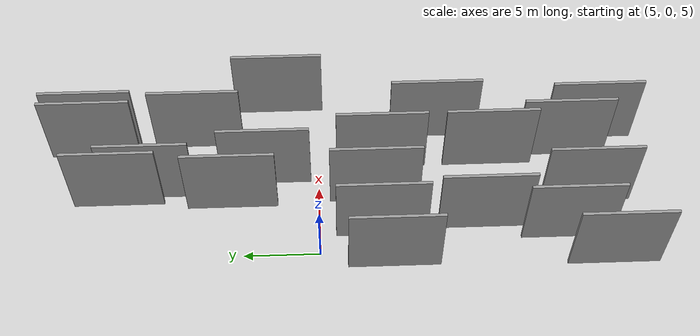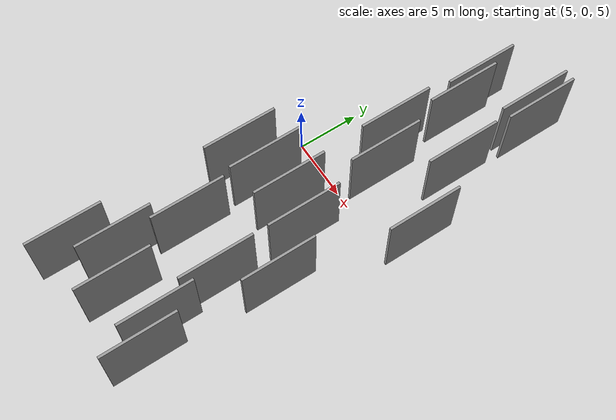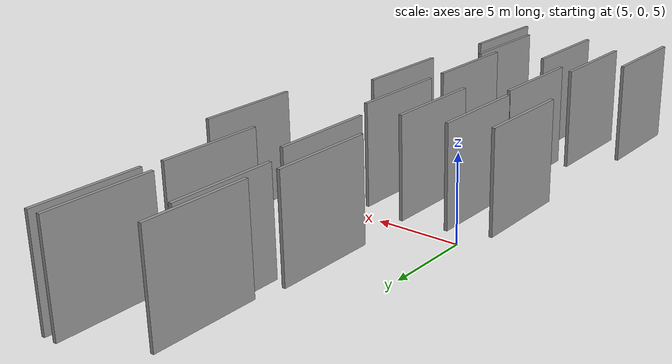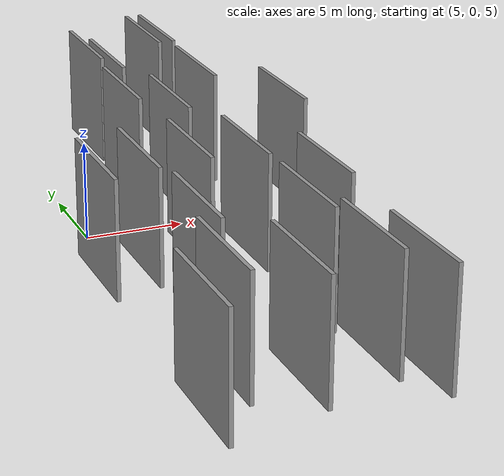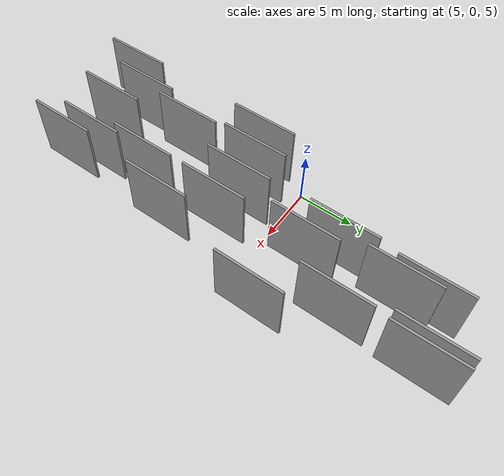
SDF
<sdf version="1.6">
 <world name="default">
  <scene>
   <sky><clouds><speed>12</speed></clouds></sky>
   <ambient>0.4 0.4 0.4 1</ambient>
   <background>0.7 0.7 0.7 1</background>
   <shadows>1</shadows>
  </scene>
  <gravity>0 0 -9.8066</gravity>
  <magnetic_field>6e-06 2.3e-05 -4.2e-05</magnetic_field>
  <physics default="0" name="default_physics" type="ode">
   <ode>
    <solver>
     <type>quick</type>
     <iters>10</iters>
     <sor>1.0</sor>
     <use_dynamic_moi_rescaling>0</use_dynamic_moi_rescaling>
    </solver>
    <constraints>
     <cfm>0</cfm>
     <erp>0.2</erp>
     <contact_max_correcting_vel>100</contact_max_correcting_vel>
     <contact_surface_layer>0.001</contact_surface_layer>
    </constraints>
   </ode>
   <max_step_size>0.004</max_step_size>
   <real_time_factor>1</real_time_factor>
   <real_time_update_rate>250</real_time_update_rate>
  </physics>
  <light name="sun" type="directional">
   <pose>0 0 10 0 0 0</pose>
   <diffuse>0.8 0.8 0.8 1</diffuse>
   <specular>0.2 0.2 0.2 1</specular>
   <attenuation>
    <range>1000</range>
    <constant>0.9</constant>
    <linear>0.01</linear>
    <quadratic>0.001</quadratic>
   </attenuation>
   <direction>-0.5 0.1 -0.9</direction>
  </light>
  <model name="grey_wall_1">
   <static>1</static>
   <pose>8.6702 -17.7167 5.0 0.000000 0.000000 1.570796</pose>
   <link name="link">
    <pose>0 0 3.00 0 0 0</pose>
    <collision name="collision"><geometry><box><size>6.00 0.2 6.00</size></box></geometry></collision>
    <visual name="visual">
     <cast_shadows>0</cast_shadows>
     <geometry><box><size>6.00 0.2 6.00</size></box></geometry>
     <material>
      <script>
       <uri>model://grey_wall/materials/scripts</uri>
       <uri>model://grey_wall/materials/textures</uri>
       <name>vrc/grey_wall</name>
      </script>
     </material>
    </visual>
   </link>
  </model>
  <model name="grey_wall_2">
   <static>1</static>
   <pose>11.8247 -11.4168 5.0 0.000000 0.000000 1.570796</pose>
   <link name="link">
    <pose>0 0 3.00 0 0 0</pose>
    <collision name="collision"><geometry><box><size>6.00 0.2 6.00</size></box></geometry></collision>
    <visual name="visual">
     <cast_shadows>0</cast_shadows>
     <geometry><box><size>6.00 0.2 6.00</size></box></geometry>
     <material>
      <script>
       <uri>model://grey_wall/materials/scripts</uri>
       <uri>model://grey_wall/materials/textures</uri>
       <name>vrc/grey_wall</name>
      </script>
     </material>
    </visual>
   </link>
  </model>
  <model name="grey_wall_3">
   <static>1</static>
   <pose>11.8159 -4.2176 5.0 0.000000 0.000000 1.570796</pose>
   <link name="link">
    <pose>0 0 3.00 0 0 0</pose>
    <collision name="collision"><geometry><box><size>6.00 0.2 6.00</size></box></geometry></collision>
    <visual name="visual">
     <cast_shadows>0</cast_shadows>
     <geometry><box><size>6.00 0.2 6.00</size></box></geometry>
     <material>
      <script>
       <uri>model://grey_wall/materials/scripts</uri>
       <uri>model://grey_wall/materials/textures</uri>
       <name>vrc/grey_wall</name>
      </script>
     </material>
    </visual>
   </link>
  </model>
  <model name="grey_wall_4">
   <static>1</static>
   <pose>14.1455 15.1615 5.0 0.000000 0.000000 1.570796</pose>
   <link name="link">
    <pose>0 0 3.00 0 0 0</pose>
    <collision name="collision"><geometry><box><size>6.00 0.2 6.00</size></box></geometry></collision>
    <visual name="visual">
     <cast_shadows>0</cast_shadows>
     <geometry><box><size>6.00 0.2 6.00</size></box></geometry>
     <material>
      <script>
       <uri>model://grey_wall/materials/scripts</uri>
       <uri>model://grey_wall/materials/textures</uri>
       <name>vrc/grey_wall</name>
      </script>
     </material>
    </visual>
   </link>
  </model>
  <model name="grey_wall_5">
   <static>1</static>
   <pose>13.9211 8.0993 5.0 0.000000 0.000000 1.570796</pose>
   <link name="link">
    <pose>0 0 3.00 0 0 0</pose>
    <collision name="collision"><geometry><box><size>6.00 0.2 6.00</size></box></geometry></collision>
    <visual name="visual">
     <cast_shadows>0</cast_shadows>
     <geometry><box><size>6.00 0.2 6.00</size></box></geometry>
     <material>
      <script>
       <uri>model://grey_wall/materials/scripts</uri>
       <uri>model://grey_wall/materials/textures</uri>
       <name>vrc/grey_wall</name>
      </script>
     </material>
    </visual>
   </link>
  </model>
  <model name="grey_wall_6">
   <static>1</static>
   <pose>8.8894 5.7542 5.0 0.000000 0.000000 1.570796</pose>
   <link name="link">
    <pose>0 0 3.00 0 0 0</pose>
    <collision name="collision"><geometry><box><size>6.00 0.2 6.00</size></box></geometry></collision>
    <visual name="visual">
     <cast_shadows>0</cast_shadows>
     <geometry><box><size>6.00 0.2 6.00</size></box></geometry>
     <material>
      <script>
       <uri>model://grey_wall/materials/scripts</uri>
       <uri>model://grey_wall/materials/textures</uri>
       <name>vrc/grey_wall</name>
      </script>
     </material>
    </visual>
   </link>
  </model>
  <model name="grey_wall_7">
   <static>1</static>
   <pose>4.0963 -4.7700 5.0 0.000000 0.000000 1.570796</pose>
   <link name="link">
    <pose>0 0 3.00 0 0 0</pose>
    <collision name="collision"><geometry><box><size>6.00 0.2 6.00</size></box></geometry></collision>
    <visual name="visual">
     <cast_shadows>0</cast_shadows>
     <geometry><box><size>6.00 0.2 6.00</size></box></geometry>
     <material>
      <script>
       <uri>model://grey_wall/materials/scripts</uri>
       <uri>model://grey_wall/materials/textures</uri>
       <name>vrc/grey_wall</name>
      </script>
     </material>
    </visual>
   </link>
  </model>
  <model name="grey_wall_8">
   <static>1</static>
   <pose>9.1276 -3.7219 5.0 0.000000 0.000000 1.570796</pose>
   <link name="link">
    <pose>0 0 3.00 0 0 0</pose>
    <collision name="collision"><geometry><box><size>6.00 0.2 6.00</size></box></geometry></collision>
    <visual name="visual">
     <cast_shadows>0</cast_shadows>
     <geometry><box><size>6.00 0.2 6.00</size></box></geometry>
     <material>
      <script>
       <uri>model://grey_wall/materials/scripts</uri>
       <uri>model://grey_wall/materials/textures</uri>
       <name>vrc/grey_wall</name>
      </script>
     </material>
    </visual>
   </link>
  </model>
  <model name="grey_wall_9">
   <static>1</static>
   <pose>6.8330 -10.7460 5.0 0.000000 0.000000 1.570796</pose>
   <link name="link">
    <pose>0 0 3.00 0 0 0</pose>
    <collision name="collision"><geometry><box><size>6.00 0.2 6.00</size></box></geometry></collision>
    <visual name="visual">
     <cast_shadows>0</cast_shadows>
     <geometry><box><size>6.00 0.2 6.00</size></box></geometry>
     <material>
      <script>
       <uri>model://grey_wall/materials/scripts</uri>
       <uri>model://grey_wall/materials/textures</uri>
       <name>vrc/grey_wall</name>
      </script>
     </material>
    </visual>
   </link>
  </model>
  <model name="grey_wall_10">
   <static>1</static>
   <pose>13.3306 15.1760 5.0 0.000000 0.000000 1.570796</pose>
   <link name="link">
    <pose>0 0 3.00 0 0 0</pose>
    <collision name="collision"><geometry><box><size>6.00 0.2 6.00</size></box></geometry></collision>
    <visual name="visual">
     <cast_shadows>0</cast_shadows>
     <geometry><box><size>6.00 0.2 6.00</size></box></geometry>
     <material>
      <script>
       <uri>model://grey_wall/materials/scripts</uri>
       <uri>model://grey_wall/materials/textures</uri>
       <name>vrc/grey_wall</name>
      </script>
     </material>
    </visual>
   </link>
  </model>
  <model name="grey_wall_11">
   <static>1</static>
   <pose>13.8148 -18.5667 5.0 0.000000 0.000000 1.570796</pose>
   <link name="link">
    <pose>0 0 3.00 0 0 0</pose>
    <collision name="collision"><geometry><box><size>6.00 0.2 6.00</size></box></geometry></collision>
    <visual name="visual">
     <cast_shadows>0</cast_shadows>
     <geometry><box><size>6.00 0.2 6.00</size></box></geometry>
     <material>
      <script>
       <uri>model://grey_wall/materials/scripts</uri>
       <uri>model://grey_wall/materials/textures</uri>
       <name>vrc/grey_wall</name>
      </script>
     </material>
    </visual>
   </link>
  </model>
  <model name="grey_wall_12">
   <static>1</static>
   <pose>10.7604 3.5270 5.0 0.000000 0.000000 1.570796</pose>
   <link name="link">
    <pose>0 0 3.00 0 0 0</pose>
    <collision name="collision"><geometry><box><size>6.00 0.2 6.00</size></box></geometry></collision>
    <visual name="visual">
     <cast_shadows>0</cast_shadows>
     <geometry><box><size>6.00 0.2 6.00</size></box></geometry>
     <material>
      <script>
       <uri>model://grey_wall/materials/scripts</uri>
       <uri>model://grey_wall/materials/textures</uri>
       <name>vrc/grey_wall</name>
      </script>
     </material>
    </visual>
   </link>
  </model>
  <model name="grey_wall_13">
   <static>1</static>
   <pose>6.4466 -4.0645 5.0 0.000000 0.000000 1.570796</pose>
   <link name="link">
    <pose>0 0 3.00 0 0 0</pose>
    <collision name="collision"><geometry><box><size>6.00 0.2 6.00</size></box></geometry></collision>
    <visual name="visual">
     <cast_shadows>0</cast_shadows>
     <geometry><box><size>6.00 0.2 6.00</size></box></geometry>
     <material>
      <script>
       <uri>model://grey_wall/materials/scripts</uri>
       <uri>model://grey_wall/materials/textures</uri>
       <name>vrc/grey_wall</name>
      </script>
     </material>
    </visual>
   </link>
  </model>
  <model name="grey_wall_14">
   <static>1</static>
   <pose>14.2949 -7.9266 5.0 0.000000 0.000000 1.570796</pose>
   <link name="link">
    <pose>0 0 3.00 0 0 0</pose>
    <collision name="collision"><geometry><box><size>6.00 0.2 6.00</size></box></geometry></collision>
    <visual name="visual">
     <cast_shadows>0</cast_shadows>
     <geometry><box><size>6.00 0.2 6.00</size></box></geometry>
     <material>
      <script>
       <uri>model://grey_wall/materials/scripts</uri>
       <uri>model://grey_wall/materials/textures</uri>
       <name>vrc/grey_wall</name>
      </script>
     </material>
    </visual>
   </link>
  </model>
  <model name="grey_wall_15">
   <static>1</static>
   <pose>9.8549 11.2515 5.0 0.000000 0.000000 1.570796</pose>
   <link name="link">
    <pose>0 0 3.00 0 0 0</pose>
    <collision name="collision"><geometry><box><size>6.00 0.2 6.00</size></box></geometry></collision>
    <visual name="visual">
     <cast_shadows>0</cast_shadows>
     <geometry><box><size>6.00 0.2 6.00</size></box></geometry>
     <material>
      <script>
       <uri>model://grey_wall/materials/scripts</uri>
       <uri>model://grey_wall/materials/textures</uri>
       <name>vrc/grey_wall</name>
      </script>
     </material>
    </visual>
   </link>
  </model>
  <model name="grey_wall_16">
   <static>1</static>
   <pose>9.2997 13.3296 5.0 0.000000 0.000000 1.570796</pose>
   <link name="link">
    <pose>0 0 3.00 0 0 0</pose>
    <collision name="collision"><geometry><box><size>6.00 0.2 6.00</size></box></geometry></collision>
    <visual name="visual">
     <cast_shadows>0</cast_shadows>
     <geometry><box><size>6.00 0.2 6.00</size></box></geometry>
     <material>
      <script>
       <uri>model://grey_wall/materials/scripts</uri>
       <uri>model://grey_wall/materials/textures</uri>
       <name>vrc/grey_wall</name>
      </script>
     </material>
    </visual>
   </link>
  </model>
  <model name="grey_wall_17">
   <static>1</static>
   <pose>12.4734 -16.5348 5.0 0.000000 0.000000 1.570796</pose>
   <link name="link">
    <pose>0 0 3.00 0 0 0</pose>
    <collision name="collision"><geometry><box><size>6.00 0.2 6.00</size></box></geometry></collision>
    <visual name="visual">
     <cast_shadows>0</cast_shadows>
     <geometry><box><size>6.00 0.2 6.00</size></box></geometry>
     <material>
      <script>
       <uri>model://grey_wall/materials/scripts</uri>
       <uri>model://grey_wall/materials/textures</uri>
       <name>vrc/grey_wall</name>
      </script>
     </material>
    </visual>
   </link>
  </model>
  <model name="grey_wall_18">
   <static>1</static>
   <pose>16.7301 2.6571 5.0 0.000000 0.000000 1.570796</pose>
   <link name="link">
    <pose>0 0 3.00 0 0 0</pose>
    <collision name="collision"><geometry><box><size>6.00 0.2 6.00</size></box></geometry></collision>
    <visual name="visual">
     <cast_shadows>0</cast_shadows>
     <geometry><box><size>6.00 0.2 6.00</size></box></geometry>
     <material>
      <script>
       <uri>model://grey_wall/materials/scripts</uri>
       <uri>model://grey_wall/materials/textures</uri>
       <name>vrc/grey_wall</name>
      </script>
     </material>
    </visual>
   </link>
  </model>
  <model name="grey_wall_19">
   <static>1</static>
   <pose>5.9075 -16.1757 5.0 0.000000 0.000000 1.570796</pose>
   <link name="link">
    <pose>0 0 3.00 0 0 0</pose>
    <collision name="collision"><geometry><box><size>6.00 0.2 6.00</size></box></geometry></collision>
    <visual name="visual">
     <cast_shadows>0</cast_shadows>
     <geometry><box><size>6.00 0.2 6.00</size></box></geometry>
     <material>
      <script>
       <uri>model://grey_wall/materials/scripts</uri>
       <uri>model://grey_wall/materials/textures</uri>
       <name>vrc/grey_wall</name>
      </script>
     </material>
    </visual>
   </link>
  </model>
  <model name="grey_wall_20">
   <static>1</static>
   <pose>3.8753 -18.9687 5.0 0.000000 0.000000 1.570796</pose>
   <link name="link">
    <pose>0 0 3.00 0 0 0</pose>
    <collision name="collision"><geometry><box><size>6.00 0.2 6.00</size></box></geometry></collision>
    <visual name="visual">
     <cast_shadows>0</cast_shadows>
     <geometry><box><size>6.00 0.2 6.00</size></box></geometry>
     <material>
      <script>
       <uri>model://grey_wall/materials/scripts</uri>
       <uri>model://grey_wall/materials/textures</uri>
       <name>vrc/grey_wall</name>
      </script>
     </material>
    </visual>
   </link>
  </model>
 </world>
</sdf>
